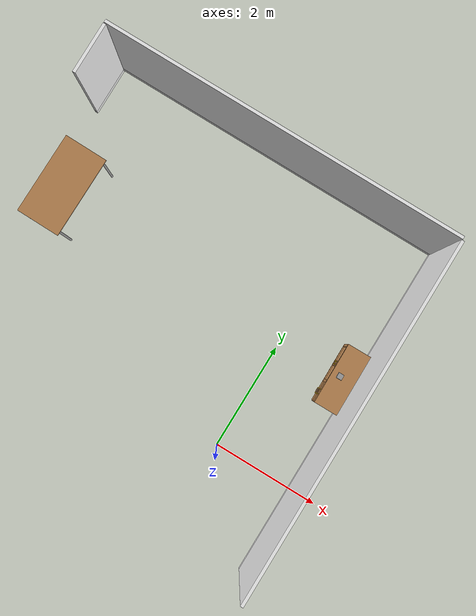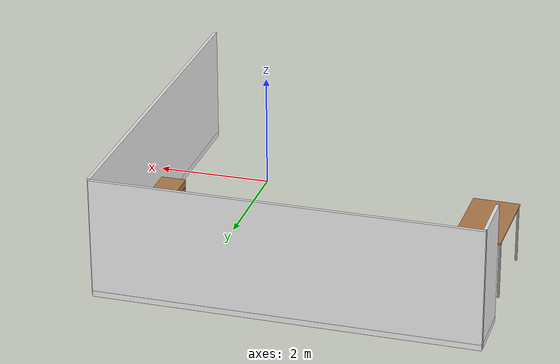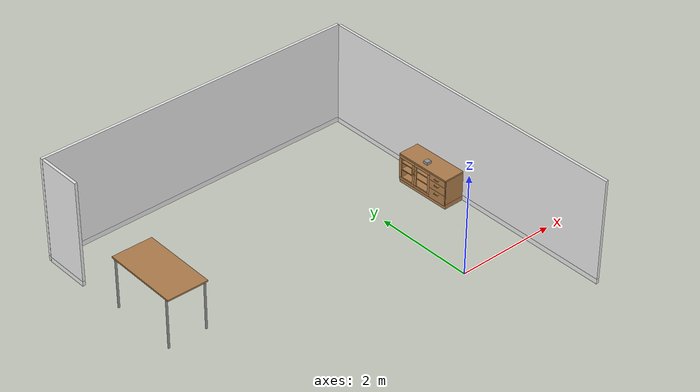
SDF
<sdf version="1.6">
 <world name="default">
  <model name="full_wall_55_6475_2090_1">
   <link name="link">
    <inertial>
     <mass>50</mass>
     <inertia><ixx>1</ixx><ixy>0</ixy><ixz>0</ixz><iyy>1</iyy><iyz>0</iyz><izz>1</izz></inertia>
    </inertial>
    <visual name="bottom_frame">
     <pose>0 0 0.05 0 -0 0</pose>
     <geometry><box><size>0.055 6.475 0.1</size></box></geometry>
     <material>
      <script><uri>model://base_materials/color/scripts</uri><name>hsr_color/white</name></script>
     </material>
    </visual>
    <collision name="collision_bottom_frame">
     <pose>0 0 0.05 0 -0 0</pose>
     <geometry><box><size>0.055 6.475 0.1</size></box></geometry>
    </collision>
    <visual name="wall">
     <pose>0 0 1.095 0 -0 0</pose>
     <geometry><box><size>0.055 6.475 1.99</size></box></geometry>
     <material>
      <script>
       <uri>model://base_materials/wall/scripts</uri>
       <uri>model://base_materials/wall/textures</uri>
       <name>wall/white_noise</name>
      </script>
     </material>
    </visual>
    <collision name="collision_wall">
     <pose>0 0 1.095 0 -0 0</pose>
     <geometry><box><size>0.055 6.475 1.99</size></box></geometry>
    </collision>
    <velocity_decay><linear>0</linear><angular>0</angular></velocity_decay>
   </link>
   <static>1</static>
   <pose>1.48469 1.60041 0 0 -0 0</pose>
  </model>
  <model name="full_wall_55_900_2090_4">
   <link name="link">
    <inertial>
     <mass>50</mass>
     <inertia><ixx>1</ixx><ixy>0</ixy><ixz>0</ixz><iyy>1</iyy><iyz>0</iyz><izz>1</izz></inertia>
    </inertial>
    <visual name="bottom_frame">
     <pose>0 0 0.05 0 -0 0</pose>
     <geometry><box><size>0.055 0.9 0.1</size></box></geometry>
     <material>
      <script><uri>model://base_materials/color/scripts</uri><name>hsr_color/white</name></script>
     </material>
    </visual>
    <collision name="collision_bottom_frame">
     <pose>0 0 0.05 0 -0 0</pose>
     <geometry><box><size>0.055 0.9 0.1</size></box></geometry>
    </collision>
    <visual name="wall">
     <pose>0 0 1.095 0 -0 0</pose>
     <geometry><box><size>0.055 0.9 1.99</size></box></geometry>
     <material>
      <script>
       <uri>model://base_materials/wall/scripts</uri>
       <uri>model://base_materials/wall/textures</uri>
       <name>wall/white_noise</name>
      </script>
     </material>
    </visual>
    <collision name="collision_wall">
     <pose>0 0 1.095 0 -0 0</pose>
     <geometry><box><size>0.055 0.9 1.99</size></box></geometry>
    </collision>
    <velocity_decay><linear>0</linear><angular>0</angular></velocity_decay>
   </link>
   <static>1</static>
   <pose>-4.9797 4.38402 0 0 -0 0</pose>
  </model>
  <model name="full_wall_55_6475_2090_2">
   <link name="link">
    <inertial>
     <mass>50</mass>
     <inertia><ixx>1</ixx><ixy>0</ixy><ixz>0</ixz><iyy>1</iyy><iyz>0</iyz><izz>1</izz></inertia>
    </inertial>
    <visual name="bottom_frame">
     <pose>0 0 0.05 0 -0 0</pose>
     <geometry><box><size>0.055 6.475 0.1</size></box></geometry>
     <material>
      <script><uri>model://base_materials/color/scripts</uri><name>hsr_color/white</name></script>
     </material>
    </visual>
    <collision name="collision_bottom_frame">
     <pose>0 0 0.05 0 -0 0</pose>
     <geometry><box><size>0.055 6.475 0.1</size></box></geometry>
    </collision>
    <visual name="wall">
     <pose>0 0 1.095 0 -0 0</pose>
     <geometry><box><size>0.055 6.475 1.99</size></box></geometry>
     <material>
      <script>
       <uri>model://base_materials/wall/scripts</uri>
       <uri>model://base_materials/wall/textures</uri>
       <name>wall/white_noise</name>
      </script>
     </material>
    </visual>
    <collision name="collision_wall">
     <pose>0 0 1.095 0 -0 0</pose>
     <geometry><box><size>0.055 6.475 1.99</size></box></geometry>
    </collision>
    <velocity_decay><linear>0</linear><angular>0</angular></velocity_decay>
   </link>
   <static>1</static>
   <pose>-1.76449 4.87676 0 0 0 -1.57017</pose>
  </model>
  <model name="table">
   <static>1</static>
   <link name="link">
    <collision name="surface">
     <pose>0 0 1 0 -0 0</pose>
     <geometry><box><size>1.5 0.8 0.03</size></box></geometry>
     <surface><friction><ode><mu>0.6</mu><mu2>0.6</mu2></ode></friction></surface>
    </collision>
    <visual name="visual1">
     <pose>0 0 1 0 -0 0</pose>
     <geometry><box><size>1.5 0.8 0.03</size></box></geometry>
     <material>
      <script><uri>file://media/materials/scripts/gazebo.material</uri><name>Gazebo/Wood</name></script>
     </material>
    </visual>
    <collision name="front_left_leg">
     <pose>0.68 0.38 0.5 0 -0 0</pose>
     <geometry><cylinder><radius>0.02</radius><length>1</length></cylinder></geometry>
    </collision>
    <visual name="front_left_leg">
     <pose>0.68 0.38 0.5 0 -0 0</pose>
     <geometry><cylinder><radius>0.02</radius><length>1</length></cylinder></geometry>
     <material>
      <script><uri>file://media/materials/scripts/gazebo.material</uri><name>Gazebo/Grey</name></script>
     </material>
    </visual>
    <collision name="front_right_leg">
     <pose>0.68 -0.38 0.5 0 -0 0</pose>
     <geometry><cylinder><radius>0.02</radius><length>1</length></cylinder></geometry>
    </collision>
    <visual name="front_right_leg">
     <pose>0.68 -0.38 0.5 0 -0 0</pose>
     <geometry><cylinder><radius>0.02</radius><length>1</length></cylinder></geometry>
     <material>
      <script><uri>file://media/materials/scripts/gazebo.material</uri><name>Gazebo/Grey</name></script>
     </material>
    </visual>
    <collision name="back_right_leg">
     <pose>-0.68 -0.38 0.5 0 -0 0</pose>
     <geometry><cylinder><radius>0.02</radius><length>1</length></cylinder></geometry>
    </collision>
    <visual name="back_right_leg">
     <pose>-0.68 -0.38 0.5 0 -0 0</pose>
     <geometry><cylinder><radius>0.02</radius><length>1</length></cylinder></geometry>
     <material>
      <script><uri>file://media/materials/scripts/gazebo.material</uri><name>Gazebo/Grey</name></script>
     </material>
    </visual>
    <collision name="back_left_leg">
     <pose>-0.68 0.38 0.5 0 -0 0</pose>
     <geometry><cylinder><radius>0.02</radius><length>1</length></cylinder></geometry>
    </collision>
    <visual name="back_left_leg">
     <pose>-0.68 0.38 0.5 0 -0 0</pose>
     <geometry><cylinder><radius>0.02</radius><length>1</length></cylinder></geometry>
     <material>
      <script><uri>file://media/materials/scripts/gazebo.material</uri><name>Gazebo/Grey</name></script>
     </material>
    </visual>
   </link>
   <pose>-4.51458 2.4162 0 0 0 -1.58412</pose>
  </model>
  <model name="living_sideboard">
   <link name="link">
    <inertial>
     <mass>10</mass>
     <inertia><ixx>1</ixx><ixy>0</ixy><ixz>0</ixz><iyy>1</iyy><iyz>0</iyz><izz>1</izz></inertia>
    </inertial>
    <visual name="left_board">
     <pose>-0.23 0.01 0.3375 0 -0 0</pose>
     <geometry><box><size>0.42 0.02 0.495</size></box></geometry>
     <material>
      <script><uri>model://base_materials/wood/scripts/wood.material</uri><name>base_materials/wood</name></script>
     </material>
    </visual>
    <collision name="collision_left_board">
     <pose>-0.23 0.01 0.3375 0 -0 0</pose>
     <geometry><box><size>0.42 0.02 0.495</size></box></geometry>
    </collision>
    <visual name="back_board">
     <pose>-0.42 0.575 0.2925 0 -0 0</pose>
     <geometry><box><size>0.02 1.11 0.585</size></box></geometry>
     <material>
      <script><uri>model://base_materials/wood/scripts/wood.material</uri><name>base_materials/wood</name></script>
     </material>
    </visual>
    <collision name="collision_back_board">
     <pose>-0.42 0.575 0.2925 0 -0 0</pose>
     <geometry><box><size>0.02 1.11 0.585</size></box></geometry>
    </collision>
    <visual name="right_board">
     <pose>-0.23 1.14 0.3375 0 -0 0</pose>
     <geometry><box><size>0.42 0.02 0.495</size></box></geometry>
     <material>
      <script><uri>model://base_materials/wood/scripts/wood.material</uri><name>base_materials/wood</name></script>
     </material>
    </visual>
    <collision name="collision_right_board">
     <pose>-0.23 1.14 0.3375 0 -0 0</pose>
     <geometry><box><size>0.42 0.02 0.495</size></box></geometry>
    </collision>
    <visual name="center_vertical_board1">
     <pose>-0.23 0.74 0.3375 0 -0 0</pose>
     <geometry><box><size>0.42 0.02 0.495</size></box></geometry>
     <material>
      <script><uri>model://base_materials/wood/scripts/wood.material</uri><name>base_materials/wood</name></script>
     </material>
    </visual>
    <collision name="collision_center_vertical_board1">
     <pose>-0.23 0.74 0.3375 0 -0 0</pose>
     <geometry><box><size>0.42 0.02 0.495</size></box></geometry>
    </collision>
    <visual name="top_board">
     <pose>-0.22 0.575 0.6 0 -0 0</pose>
     <geometry><box><size>0.44 1.15 0.03</size></box></geometry>
     <material>
      <script><uri>model://base_materials/wood/scripts/wood.material</uri><name>base_materials/wood</name></script>
     </material>
    </visual>
    <collision name="collision_top_board">
     <pose>-0.22 0.575 0.6 0 -0 0</pose>
     <geometry><box><size>0.44 1.15 0.03</size></box></geometry>
    </collision>
    <visual name="bottom_board">
     <pose>-0.23 0.575 0.045 0 -0 0</pose>
     <geometry><box><size>0.42 1.15 0.09</size></box></geometry>
     <material>
      <script><uri>model://base_materials/wood/scripts/wood.material</uri><name>base_materials/wood</name></script>
     </material>
    </visual>
    <collision name="collision_bottom_board">
     <pose>-0.23 0.575 0.045 0 -0 0</pose>
     <geometry><box><size>0.42 1.15 0.09</size></box></geometry>
    </collision>
    <visual name="1st_shelf">
     <pose>-0.225 0.37 0.259 0 -0 0</pose>
     <geometry><box><size>0.36 0.72 0.018</size></box></geometry>
     <material>
      <script><uri>model://base_materials/wood/scripts/wood.material</uri><name>base_materials/wood</name></script>
     </material>
    </visual>
    <collision name="collision_1st_shelf">
     <pose>-0.225 0.37 0.259 0 -0 0</pose>
     <geometry><box><size>0.36 0.72 0.018</size></box></geometry>
    </collision>
    <visual name="2nd_shelf">
     <pose>-0.225 0.37 0.407 0 -0 0</pose>
     <geometry><box><size>0.36 0.72 0.018</size></box></geometry>
     <material>
      <script><uri>model://base_materials/wood/scripts/wood.material</uri><name>base_materials/wood</name></script>
     </material>
    </visual>
    <collision name="collision_2nd_shelf">
     <pose>-0.225 0.37 0.407 0 -0 0</pose>
     <geometry><box><size>0.36 0.72 0.018</size></box></geometry>
    </collision>
    <visual name="1st_drawer">
     <pose>-0.2025 0.95 0.52 0 -0 0</pose>
     <geometry><box><size>0.405 0.38 0.13</size></box></geometry>
     <material>
      <script><uri>model://base_materials/wood/scripts/wood.material</uri><name>base_materials/wood</name></script>
     </material>
    </visual>
    <collision name="collision_1st_drawer">
     <pose>-0.2025 0.95 0.52 0 -0 0</pose>
     <geometry><box><size>0.405 0.38 0.13</size></box></geometry>
    </collision>
    <visual name="1st_drawer_handle_l1">
     <pose>0.015 0.9015 0.535 3.14159 1.57079 3.14159</pose>
     <geometry><cylinder><radius>0.006</radius><length>0.03</length></cylinder></geometry>
     <material>
      <ambient>1 0.84314 0 1</ambient>
      <diffuse>1 0.84314 0 1</diffuse>
      <specular>0.1 0.1 0.1 1</specular>
     </material>
    </visual>
    <collision name="collision_1st_drawer_handle_l1">
     <pose>0.015 0.9015 0.535 3.14159 1.57079 3.14159</pose>
     <geometry><cylinder><radius>0.006</radius><length>0.03</length></cylinder></geometry>
    </collision>
    <visual name="1st_drawer_handle_l2">
     <pose>0.03 0.9015 0.535 0 -0 0</pose>
     <geometry><sphere><radius>0.006</radius></sphere></geometry>
     <material>
      <ambient>1 0.84314 0 1</ambient>
      <diffuse>1 0.84314 0 1</diffuse>
      <specular>0.1 0.1 0.1 1</specular>
     </material>
    </visual>
    <collision name="collision_1st_drawer_handle_l2">
     <pose>0.03 0.9015 0.535 0 -0 0</pose>
     <geometry><sphere><radius>0.006</radius></sphere></geometry>
    </collision>
    <visual name="1st_drawer_handle_r1">
     <pose>0.015 0.9985 0.535 3.14159 1.57079 3.14159</pose>
     <geometry><cylinder><radius>0.006</radius><length>0.03</length></cylinder></geometry>
     <material>
      <ambient>1 0.84314 0 1</ambient>
      <diffuse>1 0.84314 0 1</diffuse>
      <specular>0.1 0.1 0.1 1</specular>
     </material>
    </visual>
    <collision name="collision_1st_drawer_handle_r1">
     <pose>0.015 0.9985 0.535 3.14159 1.57079 3.14159</pose>
     <geometry><cylinder><radius>0.006</radius><length>0.03</length></cylinder></geometry>
    </collision>
    <visual name="1st_drawer_handle_r2">
     <pose>0.03 0.9985 0.535 0 -0 0</pose>
     <geometry><sphere><radius>0.006</radius></sphere></geometry>
     <material>
      <ambient>1 0.84314 0 1</ambient>
      <diffuse>1 0.84314 0 1</diffuse>
      <specular>0.1 0.1 0.1 1</specular>
     </material>
    </visual>
    <collision name="collision_1st_drawer_handle_r2">
     <pose>0.03 0.9985 0.535 0 -0 0</pose>
     <geometry><sphere><radius>0.006</radius></sphere></geometry>
    </collision>
    <visual name="1st_drawer_handle_center">
     <pose>0.03 0.95 0.535 1.5708 -0 0</pose>
     <geometry><cylinder><radius>0.006</radius><length>0.097</length></cylinder></geometry>
     <material>
      <script><uri>model://base_materials/wood/scripts/wood.material</uri><name>base_materials/wood</name></script>
     </material>
    </visual>
    <collision name="collision_1st_drawer_handle_center">
     <pose>0.03 0.95 0.535 1.5708 -0 0</pose>
     <geometry><cylinder><radius>0.006</radius><length>0.097</length></cylinder></geometry>
    </collision>
    <visual name="2nd_drawer">
     <pose>-0.2025 0.95 0.37 0 -0 0</pose>
     <geometry><box><size>0.405 0.38 0.17</size></box></geometry>
     <material>
      <script><uri>model://base_materials/wood/scripts/wood.material</uri><name>base_materials/wood</name></script>
     </material>
    </visual>
    <collision name="collision_2nd_drawer">
     <pose>-0.2025 0.95 0.37 0 -0 0</pose>
     <geometry><box><size>0.405 0.38 0.17</size></box></geometry>
    </collision>
    <visual name="2nd_drawer_handle_l1">
     <pose>0.015 0.9015 0.405 3.14159 1.57079 3.14159</pose>
     <geometry><cylinder><radius>0.006</radius><length>0.03</length></cylinder></geometry>
     <material>
      <ambient>1 0.84314 0 1</ambient>
      <diffuse>1 0.84314 0 1</diffuse>
      <specular>0.1 0.1 0.1 1</specular>
     </material>
    </visual>
    <collision name="collision_2nd_drawer_handle_l1">
     <pose>0.015 0.9015 0.405 3.14159 1.57079 3.14159</pose>
     <geometry><cylinder><radius>0.006</radius><length>0.03</length></cylinder></geometry>
    </collision>
    <visual name="2nd_drawer_handle_l2">
     <pose>0.03 0.9015 0.405 0 -0 0</pose>
     <geometry><sphere><radius>0.006</radius></sphere></geometry>
     <material>
      <ambient>1 0.84314 0 1</ambient>
      <diffuse>1 0.84314 0 1</diffuse>
      <specular>0.1 0.1 0.1 1</specular>
     </material>
    </visual>
    <collision name="collision_2nd_drawer_handle_l2">
     <pose>0.03 0.9015 0.405 0 -0 0</pose>
     <geometry><sphere><radius>0.006</radius></sphere></geometry>
    </collision>
    <visual name="2nd_drawer_handle_r1">
     <pose>0.015 0.9985 0.405 3.14159 1.57079 3.14159</pose>
     <geometry><cylinder><radius>0.006</radius><length>0.03</length></cylinder></geometry>
     <material>
      <ambient>1 0.84314 0 1</ambient>
      <diffuse>1 0.84314 0 1</diffuse>
      <specular>0.1 0.1 0.1 1</specular>
     </material>
    </visual>
    <collision name="collision_2nd_drawer_handle_r1">
     <pose>0.015 0.9985 0.405 3.14159 1.57079 3.14159</pose>
     <geometry><cylinder><radius>0.006</radius><length>0.03</length></cylinder></geometry>
    </collision>
    <visual name="2nd_drawer_handle_r2">
     <pose>0.03 0.9985 0.405 0 -0 0</pose>
     <geometry><sphere><radius>0.006</radius></sphere></geometry>
     <material>
      <ambient>1 0.84314 0 1</ambient>
      <diffuse>1 0.84314 0 1</diffuse>
      <specular>0.1 0.1 0.1 1</specular>
     </material>
    </visual>
    <collision name="collision_2nd_drawer_handle_r2">
     <pose>0.03 0.9985 0.405 0 -0 0</pose>
     <geometry><sphere><radius>0.006</radius></sphere></geometry>
    </collision>
    <visual name="2nd_drawer_handle_center">
     <pose>0.03 0.95 0.405 1.5708 -0 0</pose>
     <geometry><cylinder><radius>0.006</radius><length>0.097</length></cylinder></geometry>
     <material>
      <script><uri>model://base_materials/wood/scripts/wood.material</uri><name>base_materials/wood</name></script>
     </material>
    </visual>
    <collision name="collision_2nd_drawer_handle_center">
     <pose>0.03 0.95 0.405 1.5708 -0 0</pose>
     <geometry><cylinder><radius>0.006</radius><length>0.097</length></cylinder></geometry>
    </collision>
    <visual name="3rd_drawer">
     <pose>-0.2025 0.95 0.18 0 -0 0</pose>
     <geometry><box><size>0.405 0.38 0.21</size></box></geometry>
     <material>
      <script><uri>model://base_materials/wood/scripts/wood.material</uri><name>base_materials/wood</name></script>
     </material>
    </visual>
    <collision name="collision_3rd_drawer">
     <pose>-0.2025 0.95 0.18 0 -0 0</pose>
     <geometry><box><size>0.405 0.38 0.21</size></box></geometry>
    </collision>
    <visual name="3rd_drawer_handle_l1">
     <pose>0.015 0.9015 0.235 3.14159 1.57079 3.14159</pose>
     <geometry><cylinder><radius>0.006</radius><length>0.03</length></cylinder></geometry>
     <material>
      <ambient>1 0.84314 0 1</ambient>
      <diffuse>1 0.84314 0 1</diffuse>
      <specular>0.1 0.1 0.1 1</specular>
     </material>
    </visual>
    <collision name="collision_3rd_drawer_handle_l1">
     <pose>0.015 0.9015 0.235 3.14159 1.57079 3.14159</pose>
     <geometry><cylinder><radius>0.006</radius><length>0.03</length></cylinder></geometry>
    </collision>
    <visual name="3rd_drawer_handle_l2">
     <pose>0.03 0.9015 0.235 0 -0 0</pose>
     <geometry><sphere><radius>0.006</radius></sphere></geometry>
     <material>
      <ambient>1 0.84314 0 1</ambient>
      <diffuse>1 0.84314 0 1</diffuse>
      <specular>0.1 0.1 0.1 1</specular>
     </material>
    </visual>
    <collision name="collision_3rd_drawer_handle_l2">
     <pose>0.03 0.9015 0.235 0 -0 0</pose>
     <geometry><sphere><radius>0.006</radius></sphere></geometry>
    </collision>
    <visual name="3rd_drawer_handle_r1">
     <pose>0.015 0.9985 0.235 3.14159 1.57079 3.14159</pose>
     <geometry><cylinder><radius>0.006</radius><length>0.03</length></cylinder></geometry>
     <material>
      <ambient>1 0.84314 0 1</ambient>
      <diffuse>1 0.84314 0 1</diffuse>
      <specular>0.1 0.1 0.1 1</specular>
     </material>
    </visual>
    <collision name="collision_3rd_drawer_handle_r1">
     <pose>0.015 0.9985 0.235 3.14159 1.57079 3.14159</pose>
     <geometry><cylinder><radius>0.006</radius><length>0.03</length></cylinder></geometry>
    </collision>
    <visual name="3rd_drawer_handle_r2">
     <pose>0.03 0.9985 0.235 0 -0 0</pose>
     <geometry><sphere><radius>0.006</radius></sphere></geometry>
     <material>
      <ambient>1 0.84314 0 1</ambient>
      <diffuse>1 0.84314 0 1</diffuse>
      <specular>0.1 0.1 0.1 1</specular>
     </material>
    </visual>
    <collision name="collision_3rd_drawer_handle_r2">
     <pose>0.03 0.9985 0.235 0 -0 0</pose>
     <geometry><sphere><radius>0.006</radius></sphere></geometry>
    </collision>
    <visual name="3rd_drawer_handle_center">
     <pose>0.03 0.95 0.235 1.5708 -0 0</pose>
     <geometry><cylinder><radius>0.006</radius><length>0.097</length></cylinder></geometry>
     <material>
      <script><uri>model://base_materials/wood/scripts/wood.material</uri><name>base_materials/wood</name></script>
     </material>
    </visual>
    <collision name="collision_3rd_drawer_handle_center">
     <pose>0.03 0.95 0.235 1.5708 -0 0</pose>
     <geometry><cylinder><radius>0.006</radius><length>0.097</length></cylinder></geometry>
    </collision>
    <visual name="left_door_left_frame">
     <pose>-0.01 0.025 0.3275 0 -0 0</pose>
     <geometry><box><size>0.02 0.05 0.405</size></box></geometry>
     <material>
      <script><uri>model://base_materials/wood/scripts/wood.material</uri><name>base_materials/wood</name></script>
     </material>
    </visual>
    <collision name="collision_left_door_left_frame">
     <pose>-0.01 0.025 0.3275 0 -0 0</pose>
     <geometry><box><size>0.02 0.05 0.405</size></box></geometry>
    </collision>
    <visual name="left_door_right_frame">
     <pose>-0.01 0.355 0.3275 0 -0 0</pose>
     <geometry><box><size>0.02 0.05 0.405</size></box></geometry>
     <material>
      <script><uri>model://base_materials/wood/scripts/wood.material</uri><name>base_materials/wood</name></script>
     </material>
    </visual>
    <collision name="collision_left_door_right_frame">
     <pose>-0.01 0.355 0.3275 0 -0 0</pose>
     <geometry><box><size>0.02 0.05 0.405</size></box></geometry>
    </collision>
    <visual name="left_door_handle_top1">
     <pose>0.015 0.355 0.4475 3.14159 1.57079 3.14159</pose>
     <geometry><cylinder><radius>0.006</radius><length>0.03</length></cylinder></geometry>
     <material>
      <ambient>1 0.84314 0 1</ambient>
      <diffuse>1 0.84314 0 1</diffuse>
      <specular>0.1 0.1 0.1 1</specular>
     </material>
    </visual>
    <collision name="collision_left_door_handle_top1">
     <pose>0.015 0.355 0.4475 3.14159 1.57079 3.14159</pose>
     <geometry><cylinder><radius>0.006</radius><length>0.03</length></cylinder></geometry>
    </collision>
    <visual name="left_door_handle_top2">
     <pose>0.03 0.355 0.4475 0 -0 0</pose>
     <geometry><sphere><radius>0.006</radius></sphere></geometry>
     <material>
      <ambient>1 0.84314 0 1</ambient>
      <diffuse>1 0.84314 0 1</diffuse>
      <specular>0.1 0.1 0.1 1</specular>
     </material>
    </visual>
    <collision name="collision_left_door_handle_top2">
     <pose>0.03 0.355 0.4475 0 -0 0</pose>
     <geometry><sphere><radius>0.006</radius></sphere></geometry>
    </collision>
    <visual name="left_door_handle_bottom1">
     <pose>0.015 0.355 0.3505 3.14159 1.57079 3.14159</pose>
     <geometry><cylinder><radius>0.006</radius><length>0.03</length></cylinder></geometry>
     <material>
      <ambient>1 0.84314 0 1</ambient>
      <diffuse>1 0.84314 0 1</diffuse>
      <specular>0.1 0.1 0.1 1</specular>
     </material>
    </visual>
    <collision name="collision_left_door_handle_bottom1">
     <pose>0.015 0.355 0.3505 3.14159 1.57079 3.14159</pose>
     <geometry><cylinder><radius>0.006</radius><length>0.03</length></cylinder></geometry>
    </collision>
    <visual name="left_door_handle_bottom2">
     <pose>0.03 0.355 0.3505 0 -0 0</pose>
     <geometry><sphere><radius>0.006</radius></sphere></geometry>
     <material>
      <ambient>1 0.84314 0 1</ambient>
      <diffuse>1 0.84314 0 1</diffuse>
      <specular>0.1 0.1 0.1 1</specular>
     </material>
    </visual>
    <collision name="collision_left_door_handle_bottom2">
     <pose>0.03 0.355 0.3505 0 -0 0</pose>
     <geometry><sphere><radius>0.006</radius></sphere></geometry>
    </collision>
    <visual name="left_door_handle_center">
     <pose>0.03 0.355 0.399 0 -0 0</pose>
     <geometry><cylinder><radius>0.006</radius><length>0.097</length></cylinder></geometry>
     <material>
      <script><uri>model://base_materials/wood/scripts/wood.material</uri><name>base_materials/wood</name></script>
     </material>
    </visual>
    <collision name="collision_left_door_handle_center">
     <pose>0.03 0.355 0.399 0 -0 0</pose>
     <geometry><cylinder><radius>0.006</radius><length>0.097</length></cylinder></geometry>
    </collision>
    <visual name="left_door_top_frame">
     <pose>-0.01 0.19 0.5575 0 -0 0</pose>
     <geometry><box><size>0.02 0.38 0.055</size></box></geometry>
     <material>
      <script><uri>model://base_materials/wood/scripts/wood.material</uri><name>base_materials/wood</name></script>
     </material>
    </visual>
    <collision name="collision_left_door_top_frame">
     <pose>-0.01 0.19 0.5575 0 -0 0</pose>
     <geometry><box><size>0.02 0.38 0.055</size></box></geometry>
    </collision>
    <visual name="left_door_bottom_frame">
     <pose>-0.01 0.19 0.1 0 -0 0</pose>
     <geometry><box><size>0.02 0.38 0.05</size></box></geometry>
     <material>
      <script><uri>model://base_materials/wood/scripts/wood.material</uri><name>base_materials/wood</name></script>
     </material>
    </visual>
    <collision name="collision_left_door_bottom_frame">
     <pose>-0.01 0.19 0.1 0 -0 0</pose>
     <geometry><box><size>0.02 0.38 0.05</size></box></geometry>
    </collision>
    <visual name="right_door_left_frame">
     <pose>-0.01 0.405 0.3275 0 -0 0</pose>
     <geometry><box><size>0.02 0.05 0.405</size></box></geometry>
     <material>
      <script><uri>model://base_materials/wood/scripts/wood.material</uri><name>base_materials/wood</name></script>
     </material>
    </visual>
    <collision name="collision_right_door_left_frame">
     <pose>-0.01 0.405 0.3275 0 -0 0</pose>
     <geometry><box><size>0.02 0.05 0.405</size></box></geometry>
    </collision>
    <visual name="right_door_right_frame">
     <pose>-0.01 0.735 0.3275 0 -0 0</pose>
     <geometry><box><size>0.02 0.05 0.405</size></box></geometry>
     <material>
      <script><uri>model://base_materials/wood/scripts/wood.material</uri><name>base_materials/wood</name></script>
     </material>
    </visual>
    <collision name="collision_right_door_right_frame">
     <pose>-0.01 0.735 0.3275 0 -0 0</pose>
     <geometry><box><size>0.02 0.05 0.405</size></box></geometry>
    </collision>
    <visual name="right_door_top_frame">
     <pose>-0.01 0.57 0.5575 0 -0 0</pose>
     <geometry><box><size>0.02 0.38 0.055</size></box></geometry>
     <material>
      <script><uri>model://base_materials/wood/scripts/wood.material</uri><name>base_materials/wood</name></script>
     </material>
    </visual>
    <collision name="collision_right_door_top_frame">
     <pose>-0.01 0.57 0.5575 0 -0 0</pose>
     <geometry><box><size>0.02 0.38 0.055</size></box></geometry>
    </collision>
    <visual name="right_door_bottom_frame">
     <pose>-0.01 0.57 0.1 0 -0 0</pose>
     <geometry><box><size>0.02 0.38 0.05</size></box></geometry>
     <material>
      <script><uri>model://base_materials/wood/scripts/wood.material</uri><name>base_materials/wood</name></script>
     </material>
    </visual>
    <collision name="collision_right_door_bottom_frame">
     <pose>-0.01 0.57 0.1 0 -0 0</pose>
     <geometry><box><size>0.02 0.38 0.05</size></box></geometry>
    </collision>
    <visual name="right_door_handle_top1">
     <pose>0.015 0.405 0.4475 3.14159 1.57079 3.14159</pose>
     <geometry><cylinder><radius>0.006</radius><length>0.03</length></cylinder></geometry>
     <material>
      <ambient>1 0.84314 0 1</ambient>
      <diffuse>1 0.84314 0 1</diffuse>
      <specular>0.1 0.1 0.1 1</specular>
     </material>
    </visual>
    <collision name="collision_right_door_handle_top1">
     <pose>0.015 0.405 0.4475 3.14159 1.57079 3.14159</pose>
     <geometry><cylinder><radius>0.006</radius><length>0.03</length></cylinder></geometry>
    </collision>
    <visual name="right_door_handle_top2">
     <pose>0.03 0.405 0.4475 0 -0 0</pose>
     <geometry><sphere><radius>0.006</radius></sphere></geometry>
     <material>
      <ambient>1 0.84314 0 1</ambient>
      <diffuse>1 0.84314 0 1</diffuse>
      <specular>0.1 0.1 0.1 1</specular>
     </material>
    </visual>
    <collision name="collision_right_door_handle_top2">
     <pose>0.03 0.405 0.4475 0 -0 0</pose>
     <geometry><sphere><radius>0.006</radius></sphere></geometry>
    </collision>
    <visual name="right_door_handle_bottom1">
     <pose>0.015 0.405 0.3505 3.14159 1.57079 3.14159</pose>
     <geometry><cylinder><radius>0.006</radius><length>0.03</length></cylinder></geometry>
     <material>
      <ambient>1 0.84314 0 1</ambient>
      <diffuse>1 0.84314 0 1</diffuse>
      <specular>0.1 0.1 0.1 1</specular>
     </material>
    </visual>
    <collision name="collision_right_door_handle_bottom1">
     <pose>0.015 0.405 0.3505 3.14159 1.57079 3.14159</pose>
     <geometry><cylinder><radius>0.006</radius><length>0.03</length></cylinder></geometry>
    </collision>
    <visual name="right_door_handle_bottom2">
     <pose>0.03 0.405 0.3505 0 -0 0</pose>
     <geometry><sphere><radius>0.006</radius></sphere></geometry>
     <material>
      <ambient>1 0.84314 0 1</ambient>
      <diffuse>1 0.84314 0 1</diffuse>
      <specular>0.1 0.1 0.1 1</specular>
     </material>
    </visual>
    <collision name="collision_right_door_handle_bottom2">
     <pose>0.03 0.405 0.3505 0 -0 0</pose>
     <geometry><sphere><radius>0.006</radius></sphere></geometry>
    </collision>
    <visual name="right_door_handle_center">
     <pose>0.03 0.405 0.399 0 -0 0</pose>
     <geometry><cylinder><radius>0.006</radius><length>0.097</length></cylinder></geometry>
     <material>
      <script><uri>model://base_materials/wood/scripts/wood.material</uri><name>base_materials/wood</name></script>
     </material>
    </visual>
    <collision name="collision_right_door_handle_center">
     <pose>0.03 0.4 0.399 0 -0 0</pose>
     <geometry><cylinder><radius>0.006</radius><length>0.097</length></cylinder></geometry>
    </collision>
    <velocity_decay><linear>0</linear><angular>0</angular></velocity_decay>
   </link>
   <static>1</static>
   <pose>0.997011 2.6895 0 0 0 -3.13151</pose>
  </model>
  <model name="unit_box1">
   <link name="link">
    <inertial>
     <mass>1</mass>
     <inertia>
      <ixx>0.166667</ixx>
      <ixy>0</ixy>
      <ixz>0</ixz>
      <iyy>0.166667</iyy>
      <iyz>0</iyz>
      <izz>0.166667</izz>
     </inertia>
    </inertial>
    <visual name="visual">
     <geometry><box><size>0.1 0.1 0.05</size></box></geometry>
     <material>
      <script><name>Gazebo/Grey</name><uri>file://media/materials/scripts/gazebo.material</uri></script>
      <shader type="pixel"><normal_map>__default__</normal_map></shader>
      <ambient>0.3 0.3 0.3 1</ambient>
      <diffuse>0.7 0.7 0.7 1</diffuse>
      <specular>0.01 0.01 0.01 1</specular>
      <emissive>0 0 0 1</emissive>
     </material>
    </visual>
    <collision name="collision">
     <geometry><box><size>0.1 0.1 0.05</size></box></geometry>
     <surface>
      <friction>
       <ode><mu>1</mu><mu2>1</mu2><fdir1>0 0 0</fdir1><slip1>0</slip1><slip2>0</slip2></ode>
       <torsional>
        <coefficient>1</coefficient>
        <patch_radius>0</patch_radius>
        <surface_radius>0</surface_radius>
        <use_patch_radius>1</use_patch_radius>
        <ode><slip>0</slip></ode>
       </torsional>
      </friction>
      <bounce><restitution_coefficient>0</restitution_coefficient><threshold>1e+06</threshold></bounce>
      <contact>
       <collide_without_contact>0</collide_without_contact>
       <collide_without_contact_bitmask>1</collide_without_contact_bitmask>
       <collide_bitmask>1</collide_bitmask>
       <ode>
        <soft_cfm>0</soft_cfm>
        <soft_erp>0.2</soft_erp>
        <kp>1e+13</kp>
        <kd>1</kd>
        <max_vel>0.01</max_vel>
        <min_depth>0</min_depth>
       </ode>
       <bullet>
        <split_impulse>1</split_impulse>
        <split_impulse_penetration_threshold>-0.01</split_impulse_penetration_threshold>
        <soft_cfm>0</soft_cfm>
        <soft_erp>0.2</soft_erp>
        <kp>1e+13</kp>
        <kd>1</kd>
       </bullet>
      </contact>
     </surface>
    </collision>
   </link>
   <static>0</static>
   <pose>1.15188 2.14099 0.64 0 -0 4.6e-05</pose>
  </model>
 </world>
</sdf>
